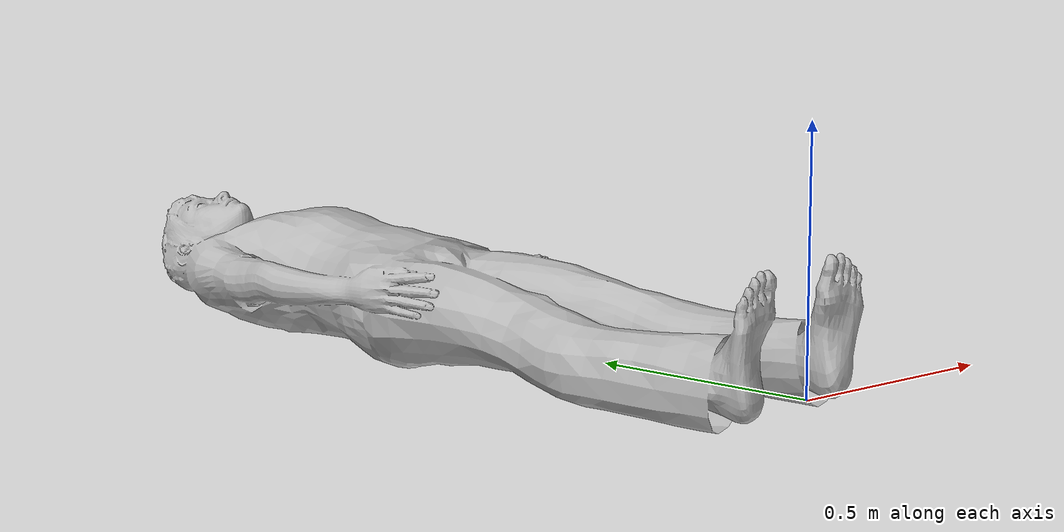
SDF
<?xml version='1.0'?>
<sdf version='1.7'>
  <model name='human_horizontal'>
    <model name='person_standing'>
      <link name='link'>
        <inertial>
          <pose>0 -0.1 0.95 0 -0 0</pose>
          <mass>80</mass>
          <inertia>
            <ixx>24.88</ixx>
            <ixy>0</ixy>
            <ixz>0</ixz>
            <iyy>25.73</iyy>
            <iyz>0</iyz>
            <izz>2.48</izz>
          </inertia>
        </inertial>
        <collision name='bottom'>
          <pose>0 -0.1 0.01 0 -0 0</pose>
          <geometry>
            <box>
              <size>0.5 0.35 0.02</size>
            </box>
          </geometry>
        </collision>
        <collision name='person'>
          <pose>0 0 0.02 0.04 -0 0</pose>
          <geometry>
            <mesh>
              <uri>model://person_standing/meshes/standing.dae</uri>
            </mesh>
          </geometry>
        </collision>
        <visual name='visual'>
          <pose>0 0 0.02 0.04 -0 0</pose>
          <geometry>
            <mesh>
              <uri>model://person_standing/meshes/standing.dae</uri>
            </mesh>
          </geometry>
        </visual>
      </link>
      <pose>-0 -3e-06 -5e-06 -1.57135 0 0</pose>
    </model>
    <static>1</static>
    <allow_auto_disable>1</allow_auto_disable>
  </model>
</sdf>
